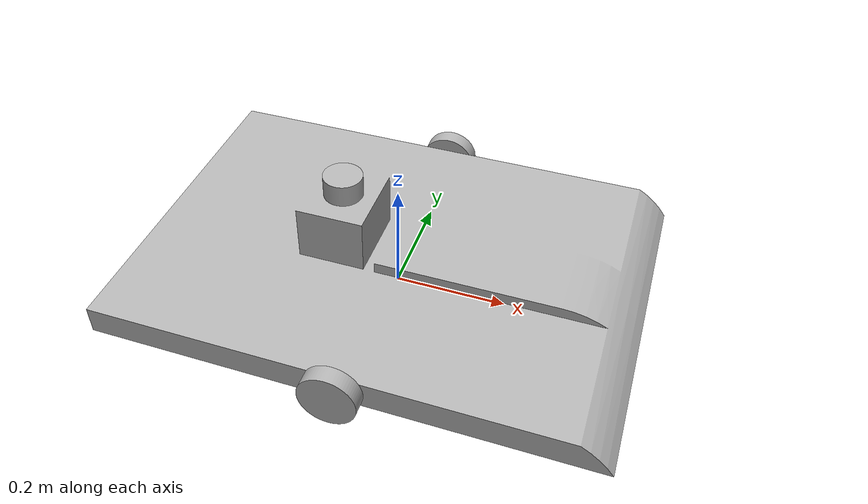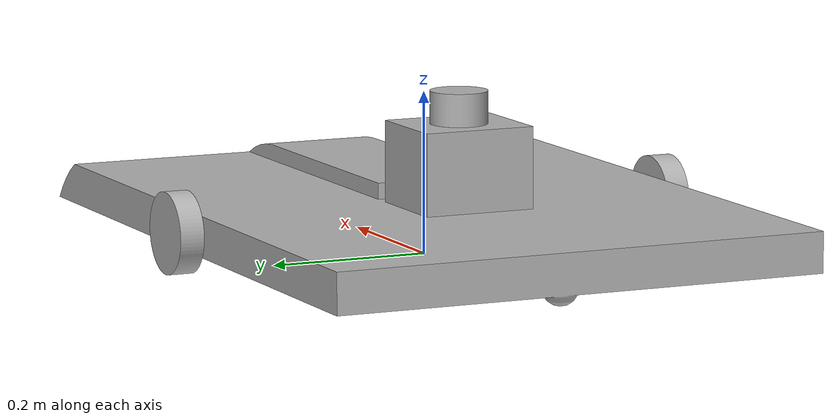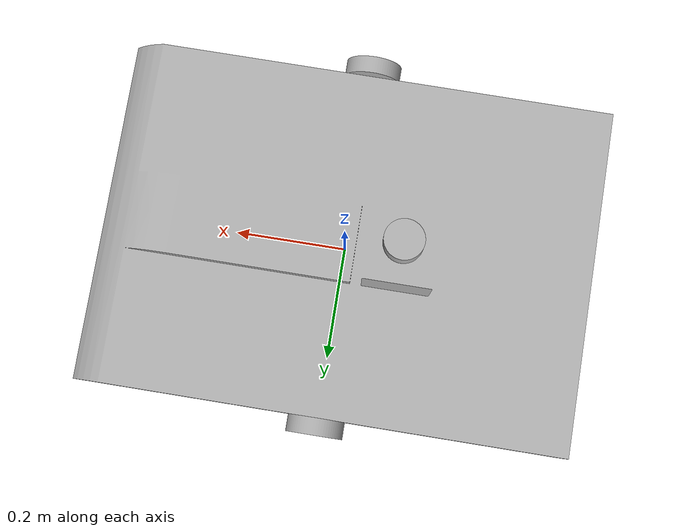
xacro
<?xml version="1.0" ?>
<robot name="t" xmlns:xacro="http://www.ros.org/wiki/xacro">

<xacro:include filename="$(find t_description)/urdf/materials.xacro" />
<xacro:include filename="$(find t_description)/urdf/t.trans" />
<xacro:include filename="$(find t_description)/urdf/t.gazebo" />
<link name="base_link">
  <inertial>
    <origin xyz="-0.010031150965119022 0.0 0.05524497619721815" rpy="0 0 0"/>
    <mass value="31.112794963221436"/>
    <inertia ixx="0.924382" iyy="1.817632" izz="2.706085" ixy="-0.0" iyz="-0.0" ixz="0.008208"/>
  </inertial>
  <visual>
    <origin xyz="0 0 0" rpy="0 0 0"/>
    <geometry>
      <mesh filename="package://t_description/meshes/base_link.stl" scale="0.001 0.001 0.001"/>
    </geometry>
    <material name="silver"/>
  </visual>
  <collision>
    <origin xyz="0 0 0" rpy="0 0 0"/>
    <geometry>
      <mesh filename="package://t_description/meshes/base_link.stl" scale="0.001 0.001 0.001"/>
    </geometry>
  </collision>
</link>

<link name="lidar_body_1">
  <inertial>
    <origin xyz="2.7755575615628914e-17 3.692616773037007e-17 0.020000000000000018" rpy="0 0 0"/>
    <mass value="0.16317432242745386"/>
    <inertia ixx="7.2e-05" iyy="7.2e-05" izz="0.0001" ixy="-0.0" iyz="0.0" ixz="0.0"/>
  </inertial>
  <visual>
    <origin xyz="0.1 -0.0 -0.175" rpy="0 0 0"/>
    <geometry>
      <mesh filename="package://t_description/meshes/lidar_body_1.stl" scale="0.001 0.001 0.001"/>
    </geometry>
    <material name="silver"/>
  </visual>
  <collision>
    <origin xyz="0.1 -0.0 -0.175" rpy="0 0 0"/>
    <geometry>
      <mesh filename="package://t_description/meshes/lidar_body_1.stl" scale="0.001 0.001 0.001"/>
    </geometry>
  </collision>
</link>

<link name="right_wl_1">
  <inertial>
    <origin xyz="-9.650038500203368e-18 -0.015000000000000013 0.0" rpy="0 0 0"/>
    <mass value="0.21912608758788835"/>
    <inertia ixx="0.000153" iyy="0.000274" izz="0.000153" ixy="0.0" iyz="0.0" ixz="-0.0"/>
  </inertial>
  <visual>
    <origin xyz="-0.0 0.31 -0.05" rpy="0 0 0"/>
    <geometry>
      <mesh filename="package://t_description/meshes/right_wl_1.stl" scale="0.001 0.001 0.001"/>
    </geometry>
    <material name="silver"/>
  </visual>
  <collision>
    <origin xyz="-0.0 0.31 -0.05" rpy="0 0 0"/>
    <geometry>
      <mesh filename="package://t_description/meshes/right_wl_1.stl" scale="0.001 0.001 0.001"/>
    </geometry>
  </collision>
</link>

<link name="left_wl_1">
  <inertial>
    <origin xyz="-9.650038500203396e-18 0.015000000000000013 -2.0816681711721685e-17" rpy="0 0 0"/>
    <mass value="0.21912608758788774"/>
    <inertia ixx="0.000153" iyy="0.000274" izz="0.000153" ixy="0.0" iyz="-0.0" ixz="-0.0"/>
  </inertial>
  <visual>
    <origin xyz="-0.0 -0.31 -0.05" rpy="0 0 0"/>
    <geometry>
      <mesh filename="package://t_description/meshes/left_wl_1.stl" scale="0.001 0.001 0.001"/>
    </geometry>
    <material name="silver"/>
  </visual>
  <collision>
    <origin xyz="-0.0 -0.31 -0.05" rpy="0 0 0"/>
    <geometry>
      <mesh filename="package://t_description/meshes/left_wl_1.stl" scale="0.001 0.001 0.001"/>
    </geometry>
  </collision>
</link>

<joint name="lidar_joint" type="fixed">
  <origin xyz="-0.1 0.0 0.175" rpy="0 0 0"/>
  <parent link="base_link"/>
  <child link="lidar_body_1"/>
</joint>

<joint name="Rev5" type="continuous">
  <origin xyz="0.0 -0.31 0.05" rpy="0 0 0"/>
  <parent link="base_link"/>
  <child link="right_wl_1"/>
  <axis xyz="0.0 1.0 0.0"/>
</joint>

<joint name="Rev6" type="continuous">
  <origin xyz="0.0 0.31 0.05" rpy="0 0 0"/>
  <parent link="base_link"/>
  <child link="left_wl_1"/>
  <axis xyz="0.0 1.0 0.0"/>
</joint>

</robot>

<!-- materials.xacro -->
<robot name="t" xmlns:xacro="http://www.ros.org/wiki/xacro" >

<material name="silver">
  <color rgba="0.700 0.700 0.700 1.000"/>
</material>

</robot>

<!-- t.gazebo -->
<robot name="t" xmlns:xacro="http://www.ros.org/wiki/xacro" >

<xacro:property name="body_color" value="Gazebo/Silver" />

<gazebo>
  <plugin name="control" filename="libgazebo_ros_control.so"/>
</gazebo>
<gazebo reference="base_link">
  <material>${body_color}</material>
  <mu1>0.1</mu1>
  <mu2>0.1</mu2>
  <selfCollide>true</selfCollide>
  <gravity>true</gravity>
</gazebo>

<gazebo reference="lidar_body_1">
  <material>${body_color}</material>
  <mu1>0.1</mu1>
  <mu2>0.1</mu2>
  <selfCollide>true</selfCollide>
</gazebo>

<gazebo reference="right_wl_1">
  <material>${body_color}</material>
  <mu1>100</mu1>
  <mu2>100</mu2>
  <selfCollide>true</selfCollide>
</gazebo>

<gazebo reference="left_wl_1">
  <material>${body_color}</material>
  <mu1>100</mu1>
  <mu2>100</mu2>
  <selfCollide>true</selfCollide>
</gazebo>

<gazebo>
  <plugin name="differential_drive_controller" filename="libgazebo_ros_diff_drive.so">

    <!-- Plugin update rate in Hz -->
    <updateRate>20</updateRate>

    <!-- Name of left joint, defaults to `left_joint` -->
    <leftJoint>Rev6</leftJoint>

    <!-- Name of right joint, defaults to `right_joint` -->
    <rightJoint>Rev5</rightJoint>

    <!-- The distance from the center of one wheel to the other, in meters, defaults to 0.34 m -->
    <wheelSeparation>0.65</wheelSeparation>

    <!-- Diameter of the wheels, in meters, defaults to 0.15 m -->
    <wheelDiameter>0.1</wheelDiameter>

    <!-- Wheel acceleration, in rad/s^2, defaults to 0.0 rad/s^2 -->
    <wheelAcceleration>1.0</wheelAcceleration>

    <!-- Maximum torque which the wheels can produce, in Nm, defaults to 5 Nm -->
    <wheelTorque>20</wheelTorque>

    <!-- Topic to receive geometry_msgs/Twist message commands, defaults to `cmd_vel` -->
    <commandTopic>cmd_vel</commandTopic>

    <!-- Topic to publish nav_msgs/Odometry messages, defaults to `odom` -->
    <odometryTopic>odom</odometryTopic>

    <!-- Odometry frame, defaults to `odom` -->
    <odometryFrame>odom</odometryFrame>

    <!-- Robot frame to calculate odometry from, defaults to `base_footprint` -->
    <robotBaseFrame>base_link</robotBaseFrame>

    <!-- Odometry source, 0 for ENCODER, 1 for WORLD, defaults to WORLD -->
    <odometrySource>1</odometrySource>

    <!-- Set to true to publish transforms for the wheel links, defaults to false -->
    <publishWheelTF>true</publishWheelTF>

    <!-- Set to true to publish transforms for the odometry, defaults to true -->
    <publishOdom>true</publishOdom>

    <!-- Set to true to publish sensor_msgs/JointState on /joint_states for the wheel joints, defaults to false -->
    <publishWheelJointState>true</publishWheelJointState>

    <!-- Set to true to swap right and left wheels, defaults to true -->
    <legacyMode>false</legacyMode>
  </plugin>
</gazebo>

</robot>
